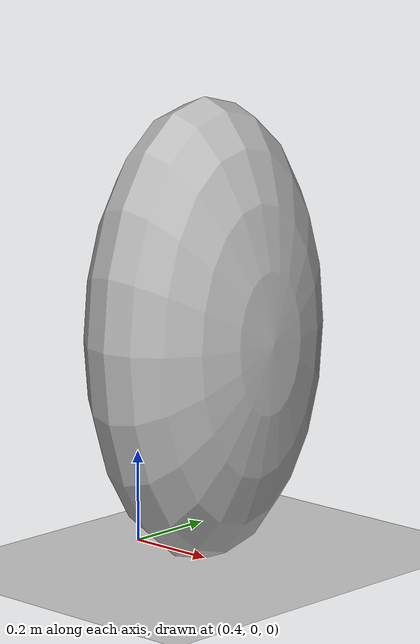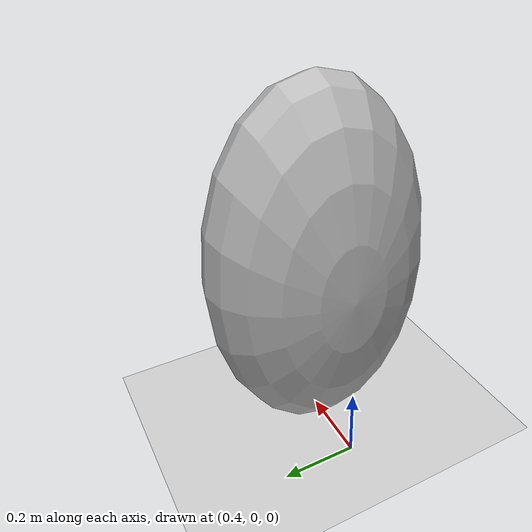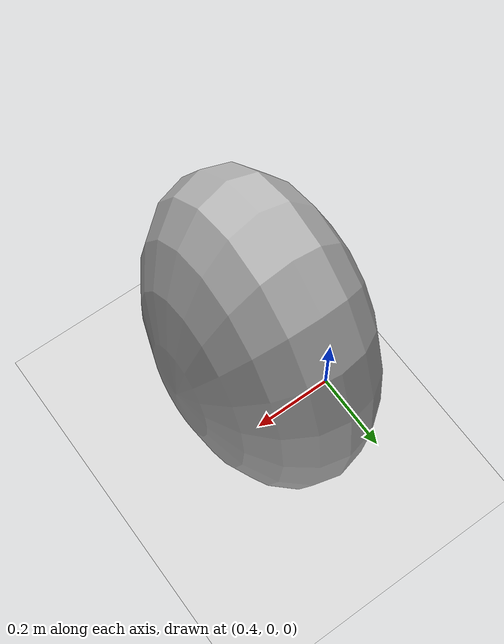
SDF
<?xml version="1.0" ?>
<sdf version="1.9">
  <world name="demo_ellipsoid">

    <!-- ── Core simulation plugins ── -->
    <plugin filename="gz-sim-physics-system"
            name="gz::sim::systems::Physics"/>
    <plugin filename="gz-sim-user-commands-system"
            name="gz::sim::systems::UserCommands"/>
    <plugin filename="gz-sim-scene-broadcaster-system"
            name="gz::sim::systems::SceneBroadcaster"/>
    <!-- Sensors system drives the render thread (needed for PreRender events). -->
    <plugin filename="gz-sim-sensors-system"
            name="gz::sim::systems::Sensors">
      <render_engine>ogre2</render_engine>
    </plugin>
    <!-- Particle emitter system — processes ParticleEmitterCmd to toggle emitters. -->
    <plugin filename="gz-sim-particle-emitter-system"
            name="gz::sim::systems::ParticleEmitter"/>

    <!-- ── Physics ── -->
    <physics name="1ms" type="dart">
      <max_step_size>0.001</max_step_size>
      <real_time_factor>1.0</real_time_factor>
      <dart>
        <collision_detector>bullet</collision_detector>
      </dart>
    </physics>

    <!-- ── Lighting ── -->
    <scene>
      <ambient>0.4 0.4 0.4 1</ambient>
      <background>0.7 0.7 0.8 1</background>
      <shadows>true</shadows>
    </scene>

    <light type="directional" name="sun">
      <cast_shadows>true</cast_shadows>
      <pose>0 0 10 0 -0 0</pose>
      <diffuse>0.8 0.8 0.8 1</diffuse>
      <specular>0.2 0.2 0.2 1</specular>
      <direction>-0.5 0.1 -0.9</direction>
    </light>

    <!-- ── Ground plane ── -->
    <model name="ground_plane">
      <static>true</static>
      <link name="link">
        <collision name="collision">
          <geometry>
            <plane><normal>0 0 1</normal><size>20 20</size></plane>
          </geometry>
        </collision>
        <visual name="visual">
          <geometry>
            <plane><normal>0 0 1</normal><size>20 20</size></plane>
          </geometry>
          <material>
            <ambient>0.8 0.8 0.8 1</ambient>
            <diffuse>0.8 0.8 0.8 1</diffuse>
          </material>
        </visual>
      </link>
    </model>

    <!-- Paint target: ellipsoid -->
    <model name="ellipsoid">
      <static>true</static>
      <pose>0.6 0 0.5 3.14 -1.57 3.14</pose>
      <link name="ellipsoid">
        <visual name="ellipsoid_visual">
          <geometry>
            <ellipsoid>
              <radii>0.5 0.3 0.2</radii>
            </ellipsoid>
          </geometry>
        </visual>
        <collision name="ellipsoid_collision">
          <geometry>
            <ellipsoid>
              <radii>0.5 0.3 0.2</radii>
            </ellipsoid>
          </geometry>
        </collision>
      </link>
    </model>

  </world>
</sdf>
